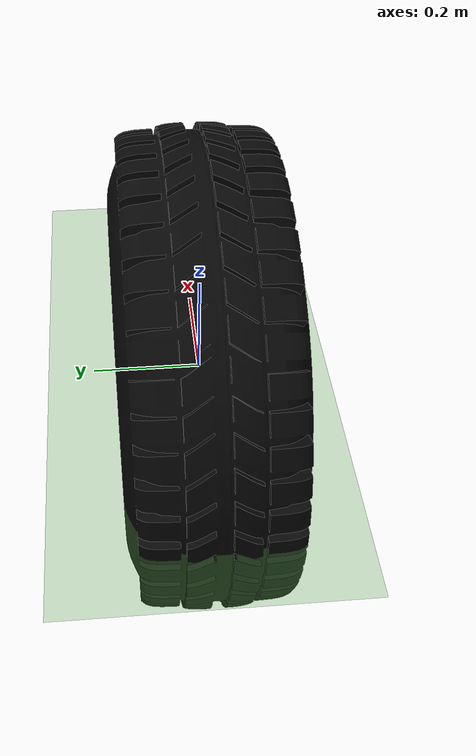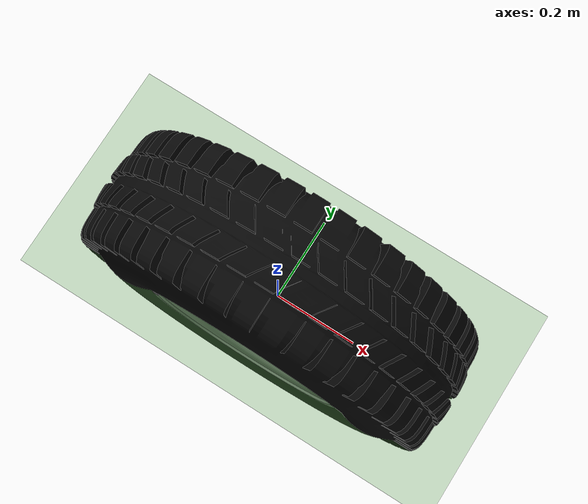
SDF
<sdf version="1.5">
 <world name="GcWorld">
  <scene><sky><clouds><speed>5.0</speed><direction>1 0 0</direction></clouds></sky></scene>
  <include><uri>model://sun</uri></include>
  <model name="my_ground_plane">
   <static>true</static>
   <link name="link">
    <visual name="visual">
     <geometry><plane><normal>0 0 1</normal><size>500 500</size></plane></geometry>
     <material><script><uri>model://../data/gazono.material</uri><name>Gazebo/Grass1</name></script></material>
    </visual>
   </link>
  </model>
  <model name="wheel0_0">
   <link name="link">
    <visual name="visual">
     <geometry><mesh><uri>file://wheel_R.dae</uri><scale>1.0 1.0 1.0</scale></mesh></geometry>
    </visual>
   </link>
  </model>
  <model name="wheel0_1">
   <link name="link">
    <visual name="visual">
     <geometry><mesh><uri>file://wheel_R.dae</uri><scale>1.0 1.0 1.0</scale></mesh></geometry>
    </visual>
   </link>
  </model>
  <model name="wheel0_2">
   <link name="link">
    <visual name="visual">
     <geometry><mesh><uri>file://wheel_R.dae</uri><scale>1.0 1.0 1.0</scale></mesh></geometry>
    </visual>
   </link>
  </model>
  <model name="wheel0_3">
   <link name="link">
    <visual name="visual">
     <geometry><mesh><uri>file://wheel_R.dae</uri><scale>1.0 1.0 1.0</scale></mesh></geometry>
    </visual>
   </link>
  </model>
  <model name="wheel1_0">
   <link name="link">
    <visual name="visual">
     <geometry><mesh><uri>file://wheel_R.dae</uri><scale>1.0 1.0 1.0</scale></mesh></geometry>
    </visual>
   </link>
  </model>
  <model name="wheel1_1">
   <link name="link">
    <visual name="visual">
     <geometry><mesh><uri>file://wheel_R.dae</uri><scale>1.0 1.0 1.0</scale></mesh></geometry>
    </visual>
   </link>
  </model>
  <model name="wheel1_2">
   <link name="link">
    <visual name="visual">
     <geometry><mesh><uri>file://wheel_R.dae</uri><scale>1.0 1.0 1.0</scale></mesh></geometry>
    </visual>
   </link>
  </model>
  <model name="wheel1_3">
   <link name="link">
    <visual name="visual">
     <geometry><mesh><uri>file://wheel_R.dae</uri><scale>1.0 1.0 1.0</scale></mesh></geometry>
    </visual>
   </link>
  </model>
  <plugin name="chrono_gazebo" filename="libchrono_gazebo.so"/>
 </world>
</sdf>
